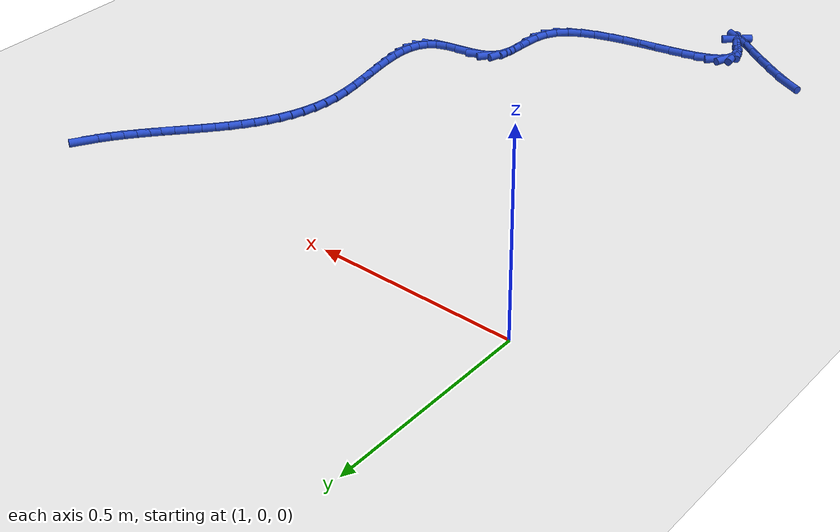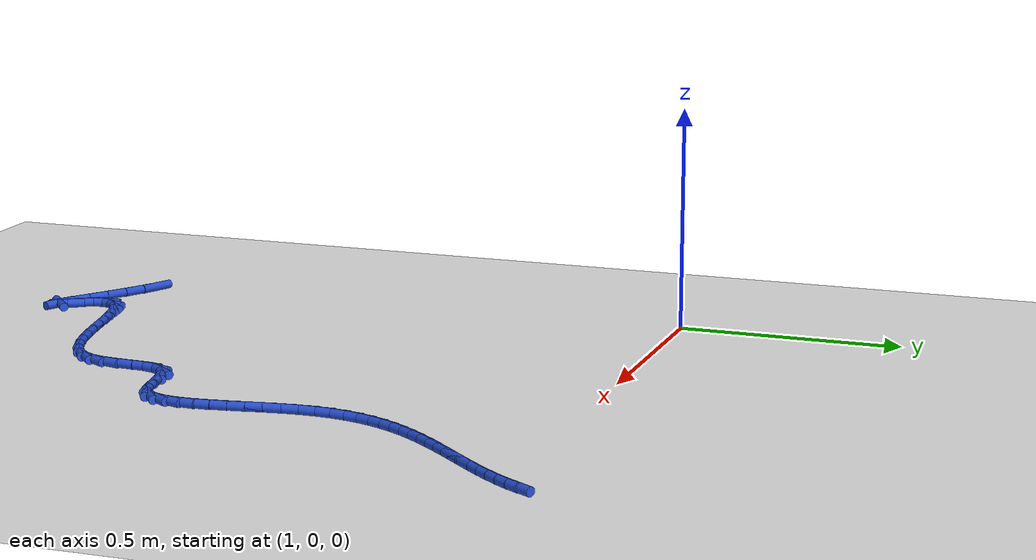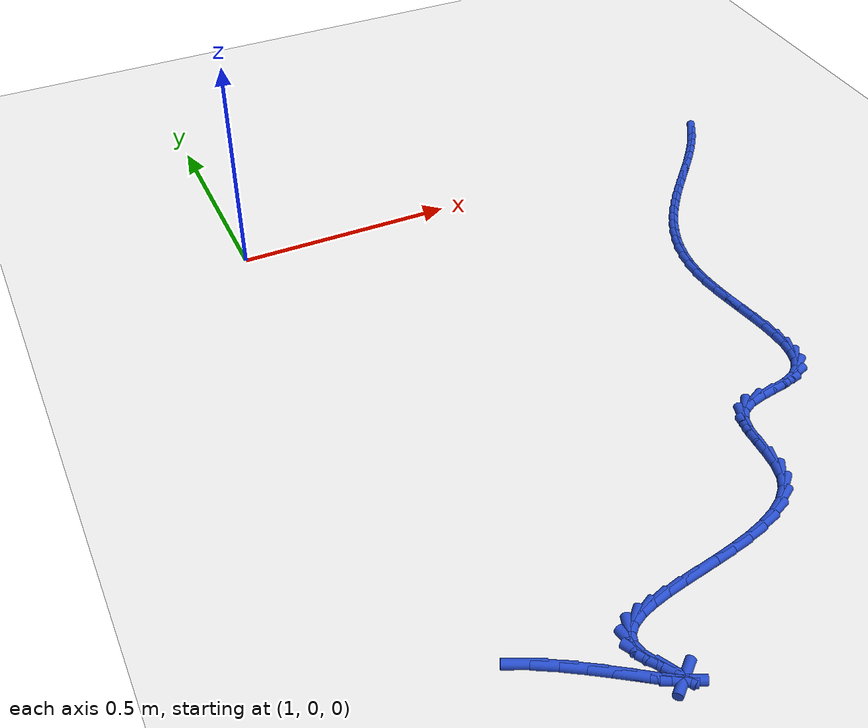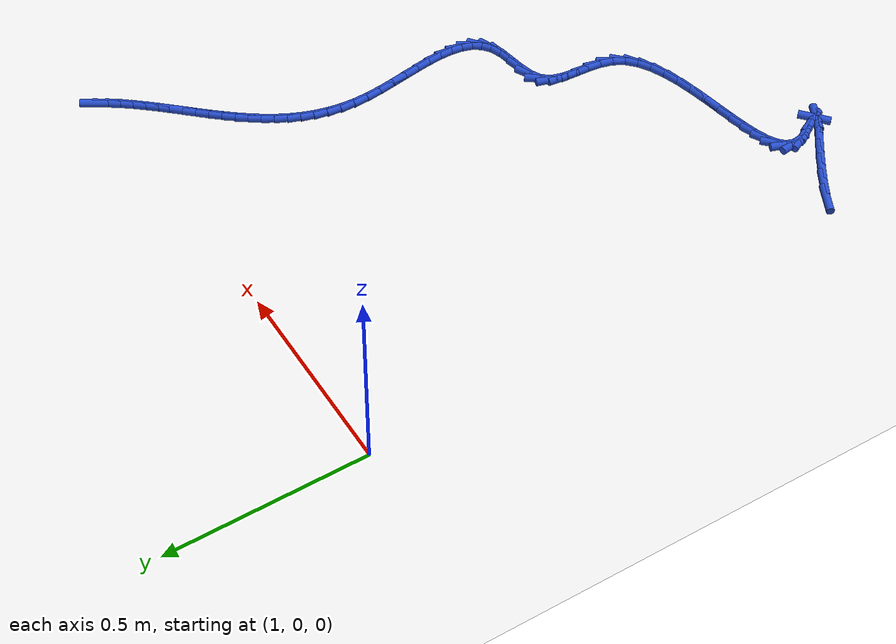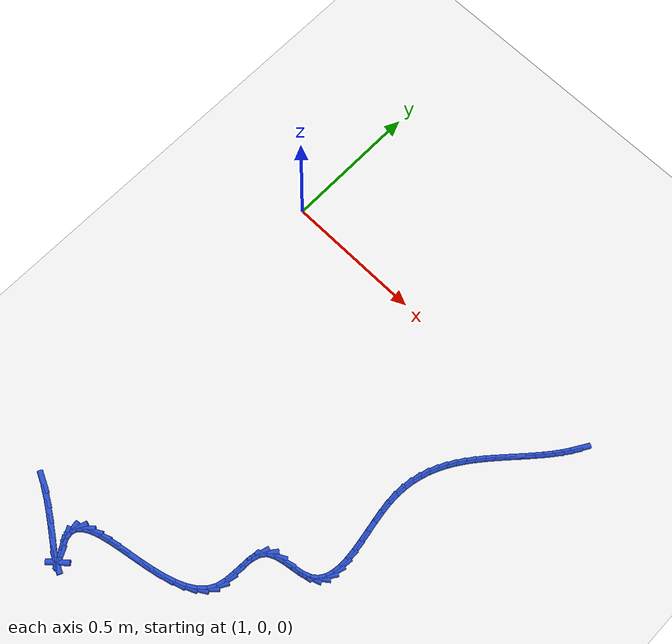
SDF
<sdf version="1.6">
 <world name="default">
  <model name="ground_plane">
   <static>1</static>
   <link name="link">
    <collision name="collision">
     <geometry><plane><normal>0 0 1</normal><size>100 100</size></plane></geometry>
     <surface><friction><ode><mu>100</mu><mu2>50</mu2></ode></friction></surface>
    </collision>
    <visual name="visual">
     <cast_shadows>0</cast_shadows>
     <geometry><plane><normal>0 0 1</normal><size>100 100</size></plane></geometry>
     <material>
      <script><uri>file://media/materials/scripts/gazebo.material</uri><name>Gazebo/WhiteGlow</name></script>
     </material>
    </visual>
   </link>
  </model>
  <model name="line">
   <link name="link_143">
    <pose>2.24518805305615 0.0347350595012619 0.01 0 1.57 1.0238294063295366</pose>
    <collision name="collision">
     <geometry><cylinder><radius>0.01</radius><length>0.08</length></cylinder></geometry>
    </collision>
    <visual name="visual">
     <material>
      <script><name>Gazebo/Blue</name><uri>file://media/materials/scripts/gazebo.material</uri></script>
     </material>
     <geometry><cylinder><radius>0.01</radius><length>0.08</length></cylinder></geometry>
    </visual>
   </link>
   <link name="link_144">
    <pose>2.2296212810901763 0.009171328017476079 0.01 0 1.57 0.9665044520231132</pose>
    <collision name="collision">
     <geometry><cylinder><radius>0.01</radius><length>0.08</length></cylinder></geometry>
    </collision>
    <visual name="visual">
     <material>
      <script><name>Gazebo/Blue</name><uri>file://media/materials/scripts/gazebo.material</uri></script>
     </material>
     <geometry><cylinder><radius>0.01</radius><length>0.08</length></cylinder></geometry>
    </visual>
   </link>
   <link name="link_145">
    <pose>2.212298453751947 -0.01591763615794463 0.01 0 1.57 0.9206130524525977</pose>
    <collision name="collision">
     <geometry><cylinder><radius>0.01</radius><length>0.08</length></cylinder></geometry>
    </collision>
    <visual name="visual">
     <material>
      <script><name>Gazebo/Blue</name><uri>file://media/materials/scripts/gazebo.material</uri></script>
     </material>
     <geometry><cylinder><radius>0.01</radius><length>0.08</length></cylinder></geometry>
    </visual>
   </link>
   <link name="link_146">
    <pose>2.1935097283615472 -0.04062359640479647 0.01 0 1.57 0.8853420018404741</pose>
    <collision name="collision">
     <geometry><cylinder><radius>0.01</radius><length>0.08</length></cylinder></geometry>
    </collision>
    <visual name="visual">
     <material>
      <script><name>Gazebo/Blue</name><uri>file://media/materials/scripts/gazebo.material</uri></script>
     </material>
     <geometry><cylinder><radius>0.01</radius><length>0.08</length></cylinder></geometry>
    </visual>
   </link>
   <link name="link_147">
    <pose>2.173545262239058 -0.06503831610287343 0.01 0 1.57 0.8599335481359236</pose>
    <collision name="collision">
     <geometry><cylinder><radius>0.01</radius><length>0.08</length></cylinder></geometry>
    </collision>
    <visual name="visual">
     <material>
      <script><name>Gazebo/Blue</name><uri>file://media/materials/scripts/gazebo.material</uri></script>
     </material>
     <geometry><cylinder><radius>0.01</radius><length>0.08</length></cylinder></geometry>
    </visual>
   </link>
   <link name="link_148">
    <pose>2.1526952127045638 -0.08925355863197172 0.01 0 1.57 0.8437703603667672</pose>
    <collision name="collision">
     <geometry><cylinder><radius>0.01</radius><length>0.08</length></cylinder></geometry>
    </collision>
    <visual name="visual">
     <material>
      <script><name>Gazebo/Blue</name><uri>file://media/materials/scripts/gazebo.material</uri></script>
     </material>
     <geometry><cylinder><radius>0.01</radius><length>0.08</length></cylinder></geometry>
    </visual>
   </link>
   <link name="link_149">
    <pose>2.1312497370781474 -0.11336108737188688 0.01 0 1.57 0.8364165776421547</pose>
    <collision name="collision">
     <geometry><cylinder><radius>0.01</radius><length>0.08</length></cylinder></geometry>
    </collision>
    <visual name="visual">
     <material>
      <script><name>Gazebo/Blue</name><uri>file://media/materials/scripts/gazebo.material</uri></script>
     </material>
     <geometry><cylinder><radius>0.01</radius><length>0.08</length></cylinder></geometry>
    </visual>
   </link>
   <link name="link_150">
    <pose>2.1094989926798915 -0.13745266570241435 0.01 0 1.57 0.8376337652613854</pose>
    <collision name="collision">
     <geometry><cylinder><radius>0.01</radius><length>0.08</length></cylinder></geometry>
    </collision>
    <visual name="visual">
     <material>
      <script><name>Gazebo/Blue</name><uri>file://media/materials/scripts/gazebo.material</uri></script>
     </material>
     <geometry><cylinder><radius>0.01</radius><length>0.08</length></cylinder></geometry>
    </visual>
   </link>
   <link name="link_151">
    <pose>2.0877331368298804 -0.1616200570033497 0.01 0 1.57 0.8473832365019435</pose>
    <collision name="collision">
     <geometry><cylinder><radius>0.01</radius><length>0.08</length></cylinder></geometry>
    </collision>
    <visual name="visual">
     <material>
      <script><name>Gazebo/Blue</name><uri>file://media/materials/scripts/gazebo.material</uri></script>
     </material>
     <geometry><cylinder><radius>0.01</radius><length>0.08</length></cylinder></geometry>
    </visual>
   </link>
   <link name="link_152">
    <pose>2.066242326848196 -0.18595502465448832 0.01 0 1.57 0.865819841599192</pose>
    <collision name="collision">
     <geometry><cylinder><radius>0.01</radius><length>0.08</length></cylinder></geometry>
    </collision>
    <visual name="visual">
     <material>
      <script><name>Gazebo/Blue</name><uri>file://media/materials/scripts/gazebo.material</uri></script>
     </material>
     <geometry><cylinder><radius>0.01</radius><length>0.08</length></cylinder></geometry>
    </visual>
   </link>
   <link name="link_153">
    <pose>2.0453167200549216 -0.21054933203562579 0.01 0 1.57 0.8932770154827568</pose>
    <collision name="collision">
     <geometry><cylinder><radius>0.01</radius><length>0.08</length></cylinder></geometry>
    </collision>
    <visual name="visual">
     <material>
      <script><name>Gazebo/Blue</name><uri>file://media/materials/scripts/gazebo.material</uri></script>
     </material>
     <geometry><cylinder><radius>0.01</radius><length>0.08</length></cylinder></geometry>
    </visual>
   </link>
   <link name="link_154">
    <pose>2.02524647377014 -0.23549474252655753 0.01 0 1.57 0.9302360158156263</pose>
    <collision name="collision">
     <geometry><cylinder><radius>0.01</radius><length>0.08</length></cylinder></geometry>
    </collision>
    <visual name="visual">
     <material>
      <script><name>Gazebo/Blue</name><uri>file://media/materials/scripts/gazebo.material</uri></script>
     </material>
     <geometry><cylinder><radius>0.01</radius><length>0.08</length></cylinder></geometry>
    </visual>
   </link>
   <link name="link_155">
    <pose>2.006321617497516 -0.26088308816858397 0.01 0 1.57 0.9768089700307977</pose>
    <collision name="collision">
     <geometry><cylinder><radius>0.01</radius><length>0.08</length></cylinder></geometry>
    </collision>
    <visual name="visual">
     <material>
      <script><name>Gazebo/Blue</name><uri>file://media/materials/scripts/gazebo.material</uri></script>
     </material>
     <geometry><cylinder><radius>0.01</radius><length>0.08</length></cylinder></geometry>
    </visual>
   </link>
   <link name="link_156">
    <pose>1.9888045056125374 -0.2868210677624469 0.01 0 1.57 1.0322438270973906</pose>
    <collision name="collision">
     <geometry><cylinder><radius>0.01</radius><length>0.08</length></cylinder></geometry>
    </collision>
    <visual name="visual">
     <material>
      <script><name>Gazebo/Blue</name><uri>file://media/materials/scripts/gazebo.material</uri></script>
     </material>
     <geometry><cylinder><radius>0.01</radius><length>0.08</length></cylinder></geometry>
    </visual>
   </link>
   <link name="link_157">
    <pose>1.9728954593077348 -0.313448703618807 0.01 0 1.57 1.0961927992141003</pose>
    <collision name="collision">
     <geometry><cylinder><radius>0.01</radius><length>0.08</length></cylinder></geometry>
    </collision>
    <visual name="visual">
     <material>
      <script><name>Gazebo/Blue</name><uri>file://media/materials/scripts/gazebo.material</uri></script>
     </material>
     <geometry><cylinder><radius>0.01</radius><length>0.08</length></cylinder></geometry>
    </visual>
   </link>
   <link name="link_158">
    <pose>1.9587863617255552 -0.34091055087144206 0.01 0 1.57 1.168032423981075</pose>
    <collision name="collision">
     <geometry><cylinder><radius>0.01</radius><length>0.08</length></cylinder></geometry>
    </collision>
    <visual name="visual">
     <material>
      <script><name>Gazebo/Blue</name><uri>file://media/materials/scripts/gazebo.material</uri></script>
     </material>
     <geometry><cylinder><radius>0.01</radius><length>0.08</length></cylinder></geometry>
    </visual>
   </link>
   <link name="link_159">
    <pose>1.9466690960084465 -0.36935116465413015 0.01 0 1.57 1.2466456165480597</pose>
    <collision name="collision">
     <geometry><cylinder><radius>0.01</radius><length>0.08</length></cylinder></geometry>
    </collision>
    <visual name="visual">
     <material>
      <script><name>Gazebo/Blue</name><uri>file://media/materials/scripts/gazebo.material</uri></script>
     </material>
     <geometry><cylinder><radius>0.01</radius><length>0.08</length></cylinder></geometry>
    </visual>
   </link>
   <link name="link_160">
    <pose>1.9367355452988555 -0.3989151001006489 0.01 0 1.57 1.3304018167706633</pose>
    <collision name="collision">
     <geometry><cylinder><radius>0.01</radius><length>0.08</length></cylinder></geometry>
    </collision>
    <visual name="visual">
     <material>
      <script><name>Gazebo/Blue</name><uri>file://media/materials/scripts/gazebo.material</uri></script>
     </material>
     <geometry><cylinder><radius>0.01</radius><length>0.08</length></cylinder></geometry>
    </visual>
   </link>
   <link name="link_161">
    <pose>1.9291775927392292 -0.4297469123447764 0.01 0 1.57 1.4172437419804598</pose>
    <collision name="collision">
     <geometry><cylinder><radius>0.01</radius><length>0.08</length></cylinder></geometry>
    </collision>
    <visual name="visual">
     <material>
      <script><name>Gazebo/Blue</name><uri>file://media/materials/scripts/gazebo.material</uri></script>
     </material>
     <geometry><cylinder><radius>0.01</radius><length>0.08</length></cylinder></geometry>
    </visual>
   </link>
   <link name="link_162">
    <pose>1.9241871214720145 -0.46199115652029055 0.01 0 1.57 1.5048852646119204</pose>
    <collision name="collision">
     <geometry><cylinder><radius>0.01</radius><length>0.08</length></cylinder></geometry>
    </collision>
    <visual name="visual">
     <material>
      <script><name>Gazebo/Blue</name><uri>file://media/materials/scripts/gazebo.material</uri></script>
     </material>
     <geometry><cylinder><radius>0.01</radius><length>0.08</length></cylinder></geometry>
    </visual>
   </link>
   <link name="link_163">
    <pose>1.9219560146396588 -0.49579238776096896 0.01 0 1.57 -1.5507154641270826</pose>
    <collision name="collision">
     <geometry><cylinder><radius>0.01</radius><length>0.08</length></cylinder></geometry>
    </collision>
    <visual name="visual">
     <material>
      <script><name>Gazebo/Blue</name><uri>file://media/materials/scripts/gazebo.material</uri></script>
     </material>
     <geometry><cylinder><radius>0.01</radius><length>0.08</length></cylinder></geometry>
    </visual>
   </link>
   <link name="link_164">
    <pose>1.9226689322524324 -0.5312899555750639 0.01 0 1.57 -1.478687494076818</pose>
    <collision name="collision">
     <geometry><cylinder><radius>0.01</radius><length>0.08</length></cylinder></geometry>
    </collision>
    <visual name="visual">
     <material>
      <script><name>Gazebo/Blue</name><uri>file://media/materials/scripts/gazebo.material</uri></script>
     </material>
     <geometry><cylinder><radius>0.01</radius><length>0.08</length></cylinder></geometry>
    </visual>
   </link>
   <link name="link_165">
    <pose>1.9260893760004283 -0.5683196856741015 0.01 0 1.57 -1.4333789104963062</pose>
    <collision name="collision">
     <geometry><cylinder><radius>0.01</radius><length>0.08</length></cylinder></geometry>
    </collision>
    <visual name="visual">
     <material>
      <script><name>Gazebo/Blue</name><uri>file://media/materials/scripts/gazebo.material</uri></script>
     </material>
     <geometry><cylinder><radius>0.01</radius><length>0.08</length></cylinder></geometry>
    </visual>
   </link>
   <link name="link_166">
    <pose>1.9313349887531812 -0.6062519409923847 0.01 0 1.57 -1.4114472553672364</pose>
    <collision name="collision">
     <geometry><cylinder><radius>0.01</radius><length>0.08</length></cylinder></geometry>
    </collision>
    <visual name="visual">
     <material>
      <script><name>Gazebo/Blue</name><uri>file://media/materials/scripts/gazebo.material</uri></script>
     </material>
     <geometry><cylinder><radius>0.01</radius><length>0.08</length></cylinder></geometry>
    </visual>
   </link>
   <link name="link_167">
    <pose>1.9374686585236784 -0.6444176232897542 0.01 0 1.57 -1.4109056995880347</pose>
    <collision name="collision">
     <geometry><cylinder><radius>0.01</radius><length>0.08</length></cylinder></geometry>
    </collision>
    <visual name="visual">
     <material>
      <script><name>Gazebo/Blue</name><uri>file://media/materials/scripts/gazebo.material</uri></script>
     </material>
     <geometry><cylinder><radius>0.01</radius><length>0.08</length></cylinder></geometry>
    </visual>
   </link>
   <link name="link_168">
    <pose>1.943553273324911 -0.6821476343260521 0.01 0 1.57 -1.4324793548940657</pose>
    <collision name="collision">
     <geometry><cylinder><radius>0.01</radius><length>0.08</length></cylinder></geometry>
    </collision>
    <visual name="visual">
     <material>
      <script><name>Gazebo/Blue</name><uri>file://media/materials/scripts/gazebo.material</uri></script>
     </material>
     <geometry><cylinder><radius>0.01</radius><length>0.08</length></cylinder></geometry>
    </visual>
   </link>
   <link name="link_169">
    <pose>1.9486517211698664 -0.7187728758611195 0.01 0 1.57 -1.4799411582030864</pose>
    <collision name="collision">
     <geometry><cylinder><radius>0.01</radius><length>0.08</length></cylinder></geometry>
    </collision>
    <visual name="visual">
     <material>
      <script><name>Gazebo/Blue</name><uri>file://media/materials/scripts/gazebo.material</uri></script>
     </material>
     <geometry><cylinder><radius>0.01</radius><length>0.08</length></cylinder></geometry>
    </visual>
   </link>
   <link name="link_170">
    <pose>1.9518268900715339 -0.7536242496547976 0.01 0 1.57 -1.561083783213815</pose>
    <collision name="collision">
     <geometry><cylinder><radius>0.01</radius><length>0.08</length></cylinder></geometry>
    </collision>
    <visual name="visual">
     <material>
      <script><name>Gazebo/Blue</name><uri>file://media/materials/scripts/gazebo.material</uri></script>
     </material>
     <geometry><cylinder><radius>0.01</radius><length>0.08</length></cylinder></geometry>
    </visual>
   </link>
   <link name="link_171">
    <pose>1.9521416680429011 -0.7860326574669282 0.01 0 1.57 1.4524724681699874</pose>
    <collision name="collision">
     <geometry><cylinder><radius>0.01</radius><length>0.08</length></cylinder></geometry>
    </collision>
    <visual name="visual">
     <material>
      <script><name>Gazebo/Blue</name><uri>file://media/materials/scripts/gazebo.material</uri></script>
     </material>
     <geometry><cylinder><radius>0.01</radius><length>0.08</length></cylinder></geometry>
    </visual>
   </link>
   <link name="link_172">
    <pose>1.9486589430969583 -0.8153290010573526 0.01 0 1.57 1.2592286697993471</pose>
    <collision name="collision">
     <geometry><cylinder><radius>0.01</radius><length>0.08</length></cylinder></geometry>
    </collision>
    <visual name="visual">
     <material>
      <script><name>Gazebo/Blue</name><uri>file://media/materials/scripts/gazebo.material</uri></script>
     </material>
     <geometry><cylinder><radius>0.01</radius><length>0.08</length></cylinder></geometry>
    </visual>
   </link>
   <link name="link_173">
    <pose>1.9404416032466925 -0.8408441821859128 0.01 0 1.57 0.9878791571148551</pose>
    <collision name="collision">
     <geometry><cylinder><radius>0.01</radius><length>0.08</length></cylinder></geometry>
    </collision>
    <visual name="visual">
     <material>
      <script><name>Gazebo/Blue</name><uri>file://media/materials/scripts/gazebo.material</uri></script>
     </material>
     <geometry><cylinder><radius>0.01</radius><length>0.08</length></cylinder></geometry>
    </visual>
   </link>
   <link name="link_174">
    <pose>1.9265525365050937 -0.8619091026124486 0.01 0 1.57 0.6611266339393992</pose>
    <collision name="collision">
     <geometry><cylinder><radius>0.01</radius><length>0.08</length></cylinder></geometry>
    </collision>
    <visual name="visual">
     <material>
      <script><name>Gazebo/Blue</name><uri>file://media/materials/scripts/gazebo.material</uri></script>
     </material>
     <geometry><cylinder><radius>0.01</radius><length>0.08</length></cylinder></geometry>
    </visual>
   </link>
   <link name="link_175">
    <pose>1.9060546308851505 -0.8778546640968026 0.01 0 1.57 0.36059000293730653</pose>
    <collision name="collision">
     <geometry><cylinder><radius>0.01</radius><length>0.08</length></cylinder></geometry>
    </collision>
    <visual name="visual">
     <material>
      <script><name>Gazebo/Blue</name><uri>file://media/materials/scripts/gazebo.material</uri></script>
     </material>
     <geometry><cylinder><radius>0.01</radius><length>0.08</length></cylinder></geometry>
    </visual>
   </link>
   <link name="link_176">
    <pose>1.878371639228813 -0.8882932723402532 0.01 0 1.57 0.2056718425971205</pose>
    <collision name="collision">
     <geometry><cylinder><radius>0.01</radius><length>0.08</length></cylinder></geometry>
    </collision>
    <visual name="visual">
     <material>
      <script><name>Gazebo/Blue</name><uri>file://media/materials/scripts/gazebo.material</uri></script>
     </material>
     <geometry><cylinder><radius>0.01</radius><length>0.08</length></cylinder></geometry>
    </visual>
   </link>
   <link name="link_177">
    <pose>1.8458102808887387 -0.8950862815995017 0.01 0 1.57 0.17842122880281444</pose>
    <collision name="collision">
     <geometry><cylinder><radius>0.01</radius><length>0.08</length></cylinder></geometry>
    </collision>
    <visual name="visual">
     <material>
      <script><name>Gazebo/Blue</name><uri>file://media/materials/scripts/gazebo.material</uri></script>
     </material>
     <geometry><cylinder><radius>0.01</radius><length>0.08</length></cylinder></geometry>
    </visual>
   </link>
   <link name="link_178">
    <pose>1.8120590501102474 -0.9011729430257267 0.01 0 1.57 0.2604418599196795</pose>
    <collision name="collision">
     <geometry><cylinder><radius>0.01</radius><length>0.08</length></cylinder></geometry>
    </collision>
    <visual name="visual">
     <material>
      <script><name>Gazebo/Blue</name><uri>file://media/materials/scripts/gazebo.material</uri></script>
     </material>
     <geometry><cylinder><radius>0.01</radius><length>0.08</length></cylinder></geometry>
    </visual>
   </link>
   <link name="link_179">
    <pose>1.7808151273095376 -0.9094992836904567 0.01 0 1.57 0.49484727813183976</pose>
    <collision name="collision">
     <geometry><cylinder><radius>0.01</radius><length>0.08</length></cylinder></geometry>
    </collision>
    <visual name="visual">
     <material>
      <script><name>Gazebo/Blue</name><uri>file://media/materials/scripts/gazebo.material</uri></script>
     </material>
     <geometry><cylinder><radius>0.01</radius><length>0.08</length></cylinder></geometry>
    </visual>
   </link>
   <link name="link_180">
    <pose>1.7557756929028074 -0.9230113306652198 0.01 0 1.57 0.9281044095483594</pose>
    <collision name="collision">
     <geometry><cylinder><radius>0.01</radius><length>0.08</length></cylinder></geometry>
    </collision>
    <visual name="visual">
     <material>
      <script><name>Gazebo/Blue</name><uri>file://media/materials/scripts/gazebo.material</uri></script>
     </material>
     <geometry><cylinder><radius>0.01</radius><length>0.08</length></cylinder></geometry>
    </visual>
   </link>
   <link name="link_181">
    <pose>1.7399571834803471 -0.9441382710958495 0.01 0 1.57 1.2908158634999203</pose>
    <collision name="collision">
     <geometry><cylinder><radius>0.01</radius><length>0.08</length></cylinder></geometry>
    </collision>
    <visual name="visual">
     <material>
      <script><name>Gazebo/Blue</name><uri>file://media/materials/scripts/gazebo.material</uri></script>
     </material>
     <geometry><cylinder><radius>0.01</radius><length>0.08</length></cylinder></geometry>
    </visual>
   </link>
   <link name="link_182">
    <pose>1.7319587819368476 -0.9719555884515036 0.01 0 1.57 1.4675238238905113</pose>
    <collision name="collision">
     <geometry><cylinder><radius>0.01</radius><length>0.08</length></cylinder></geometry>
    </collision>
    <visual name="visual">
     <material>
      <script><name>Gazebo/Blue</name><uri>file://media/materials/scripts/gazebo.material</uri></script>
     </material>
     <geometry><cylinder><radius>0.01</radius><length>0.08</length></cylinder></geometry>
    </visual>
   </link>
   <link name="link_183">
    <pose>1.7286168891494766 -1.0042004123415178 0.01 0 1.57 1.516974628823342</pose>
    <collision name="collision">
     <geometry><cylinder><radius>0.01</radius><length>0.08</length></cylinder></geometry>
    </collision>
    <visual name="visual">
     <material>
      <script><name>Gazebo/Blue</name><uri>file://media/materials/scripts/gazebo.material</uri></script>
     </material>
     <geometry><cylinder><radius>0.01</radius><length>0.08</length></cylinder></geometry>
    </visual>
   </link>
   <link name="link_184">
    <pose>1.7267633111959766 -1.0386063838738209 0.01 0 1.57 1.4681444576254798</pose>
    <collision name="collision">
     <geometry><cylinder><radius>0.01</radius><length>0.08</length></cylinder></geometry>
    </collision>
    <visual name="visual">
     <material>
      <script><name>Gazebo/Blue</name><uri>file://media/materials/scripts/gazebo.material</uri></script>
     </material>
     <geometry><cylinder><radius>0.01</radius><length>0.08</length></cylinder></geometry>
    </visual>
   </link>
   <link name="link_185">
    <pose>1.723229854154092 -1.0729071441563431 0.01 0 1.57 1.3140845494564546</pose>
    <collision name="collision">
     <geometry><cylinder><radius>0.01</radius><length>0.08</length></cylinder></geometry>
    </collision>
    <visual name="visual">
     <material>
      <script><name>Gazebo/Blue</name><uri>file://media/materials/scripts/gazebo.material</uri></script>
     </material>
     <geometry><cylinder><radius>0.01</radius><length>0.08</length></cylinder></geometry>
    </visual>
   </link>
   <link name="link_186">
    <pose>1.7148483241015653 -1.1048363342970136 0.01 0 1.57 1.0449610285897297</pose>
    <collision name="collision">
     <geometry><cylinder><radius>0.01</radius><length>0.08</length></cylinder></geometry>
    </collision>
    <visual name="visual">
     <material>
      <script><name>Gazebo/Blue</name><uri>file://media/materials/scripts/gazebo.material</uri></script>
     </material>
     <geometry><cylinder><radius>0.01</radius><length>0.08</length></cylinder></geometry>
    </visual>
   </link>
   <link name="link_187">
    <pose>1.698857139656353 -1.1323913714482348 0.01 0 1.57 0.7740770462100678</pose>
    <collision name="collision">
     <geometry><cylinder><radius>0.01</radius><length>0.08</length></cylinder></geometry>
    </collision>
    <visual name="visual">
     <material>
      <script><name>Gazebo/Blue</name><uri>file://media/materials/scripts/gazebo.material</uri></script>
     </material>
     <geometry><cylinder><radius>0.01</radius><length>0.08</length></cylinder></geometry>
    </visual>
   </link>
   <link name="link_188">
    <pose>1.6753194121197374 -1.1554020959888804 0.01 0 1.57 0.5690164515925131</pose>
    <collision name="collision">
     <geometry><cylinder><radius>0.01</radius><length>0.08</length></cylinder></geometry>
    </collision>
    <visual name="visual">
     <material>
      <script><name>Gazebo/Blue</name><uri>file://media/materials/scripts/gazebo.material</uri></script>
     </material>
     <geometry><cylinder><radius>0.01</radius><length>0.08</length></cylinder></geometry>
    </visual>
   </link>
   <link name="link_189">
    <pose>1.6454969791447769 -1.1744759812141914 0.01 0 1.57 0.42449764192786293</pose>
    <collision name="collision">
     <geometry><cylinder><radius>0.01</radius><length>0.08</length></cylinder></geometry>
    </collision>
    <visual name="visual">
     <material>
      <script><name>Gazebo/Blue</name><uri>file://media/materials/scripts/gazebo.material</uri></script>
     </material>
     <geometry><cylinder><radius>0.01</radius><length>0.08</length></cylinder></geometry>
    </visual>
   </link>
   <link name="link_190">
    <pose>1.6106560313617677 -1.1902233242652183 0.01 0 1.57 0.32563236507520843</pose>
    <collision name="collision">
     <geometry><cylinder><radius>0.01</radius><length>0.08</length></cylinder></geometry>
    </collision>
    <visual name="visual">
     <material>
      <script><name>Gazebo/Blue</name><uri>file://media/materials/scripts/gazebo.material</uri></script>
     </material>
     <geometry><cylinder><radius>0.01</radius><length>0.08</length></cylinder></geometry>
    </visual>
   </link>
   <link name="link_191">
    <pose>1.5720627594010084 -1.20325442228301 0.01 0 1.57 0.2599350548272718</pose>
    <collision name="collision">
     <geometry><cylinder><radius>0.01</radius><length>0.08</length></cylinder></geometry>
    </collision>
    <visual name="visual">
     <material>
      <script><name>Gazebo/Blue</name><uri>file://media/materials/scripts/gazebo.material</uri></script>
     </material>
     <geometry><cylinder><radius>0.01</radius><length>0.08</length></cylinder></geometry>
    </visual>
   </link>
   <link name="link_192">
    <pose>1.530983353892793 -1.2141795724086162 0.01 0 1.57 0.21933668554796307</pose>
    <collision name="collision">
     <geometry><cylinder><radius>0.01</radius><length>0.08</length></cylinder></geometry>
    </collision>
    <visual name="visual">
     <material>
      <script><name>Gazebo/Blue</name><uri>file://media/materials/scripts/gazebo.material</uri></script>
     </material>
     <geometry><cylinder><radius>0.01</radius><length>0.08</length></cylinder></geometry>
    </visual>
   </link>
   <link name="link_193">
    <pose>1.4886840054674193 -1.223609071783087 0.01 0 1.57 0.19952297966809482</pose>
    <collision name="collision">
     <geometry><cylinder><radius>0.01</radius><length>0.08</length></cylinder></geometry>
    </collision>
    <visual name="visual">
     <material>
      <script><name>Gazebo/Blue</name><uri>file://media/materials/scripts/gazebo.material</uri></script>
     </material>
     <geometry><cylinder><radius>0.01</radius><length>0.08</length></cylinder></geometry>
    </visual>
   </link>
   <link name="link_194">
    <pose>1.4464309047551833 -1.2321532175474725 0.01 0 1.57 0.1992961987043253</pose>
    <collision name="collision">
     <geometry><cylinder><radius>0.01</radius><length>0.08</length></cylinder></geometry>
    </collision>
    <visual name="visual">
     <material>
      <script><name>Gazebo/Blue</name><uri>file://media/materials/scripts/gazebo.material</uri></script>
     </material>
     <geometry><cylinder><radius>0.01</radius><length>0.08</length></cylinder></geometry>
    </visual>
   </link>
   <link name="link_195">
    <pose>1.4054902423863818 -1.2404223068428224 0.01 0 1.57 0.2206412690566134</pose>
    <collision name="collision">
     <geometry><cylinder><radius>0.01</radius><length>0.08</length></cylinder></geometry>
    </collision>
    <visual name="visual">
     <material>
      <script><name>Gazebo/Blue</name><uri>file://media/materials/scripts/gazebo.material</uri></script>
     </material>
     <geometry><cylinder><radius>0.01</radius><length>0.08</length></cylinder></geometry>
    </visual>
   </link>
   <link name="link_196">
    <pose>1.3671282089913104 -1.2490266368101863 0.01 0 1.57 0.26991787012593244</pose>
    <collision name="collision">
     <geometry><cylinder><radius>0.01</radius><length>0.08</length></cylinder></geometry>
    </collision>
    <visual name="visual">
     <material>
      <script><name>Gazebo/Blue</name><uri>file://media/materials/scripts/gazebo.material</uri></script>
     </material>
     <geometry><cylinder><radius>0.01</radius><length>0.08</length></cylinder></geometry>
    </visual>
   </link>
   <link name="link_197">
    <pose>1.3326109952002656 -1.2585765045906139 0.01 0 1.57 0.3611053230081607</pose>
    <collision name="collision">
     <geometry><cylinder><radius>0.01</radius><length>0.08</length></cylinder></geometry>
    </collision>
    <visual name="visual">
     <material>
      <script><name>Gazebo/Blue</name><uri>file://media/materials/scripts/gazebo.material</uri></script>
     </material>
     <geometry><cylinder><radius>0.01</radius><length>0.08</length></cylinder></geometry>
    </visual>
   </link>
   <link name="link_198">
    <pose>1.303204791643544 -1.2696822073251544 0.01 0 1.57 0.5228179056898009</pose>
    <collision name="collision">
     <geometry><cylinder><radius>0.01</radius><length>0.08</length></cylinder></geometry>
    </collision>
    <visual name="visual">
     <material>
      <script><name>Gazebo/Blue</name><uri>file://media/materials/scripts/gazebo.material</uri></script>
     </material>
     <geometry><cylinder><radius>0.01</radius><length>0.08</length></cylinder></geometry>
    </visual>
   </link>
   <link name="link_199">
    <pose>1.280175788951442 -1.2829540421548593 0.01 0 1.57 0.806475893326138</pose>
    <collision name="collision">
     <geometry><cylinder><radius>0.01</radius><length>0.08</length></cylinder></geometry>
    </collision>
    <visual name="visual">
     <material>
      <script><name>Gazebo/Blue</name><uri>file://media/materials/scripts/gazebo.material</uri></script>
     </material>
     <geometry><cylinder><radius>0.01</radius><length>0.08</length></cylinder></geometry>
    </visual>
   </link>
   <link name="link_200">
    <pose>1.2647901777542567 -1.2990023062207767 0.01 0 1.57 1.249152334927261</pose>
    <collision name="collision">
     <geometry><cylinder><radius>0.01</radius><length>0.08</length></cylinder></geometry>
    </collision>
    <visual name="visual">
     <material>
      <script><name>Gazebo/Blue</name><uri>file://media/materials/scripts/gazebo.material</uri></script>
     </material>
     <geometry><cylinder><radius>0.01</radius><length>0.08</length></cylinder></geometry>
    </visual>
   </link>
   <link name="link_201">
    <pose>1.2583141486822835 -1.3184372966639568 0.01 0 1.57 -1.414196448240044</pose>
    <collision name="collision">
     <geometry><cylinder><radius>0.01</radius><length>0.08</length></cylinder></geometry>
    </collision>
    <visual name="visual">
     <material>
      <script><name>Gazebo/Blue</name><uri>file://media/materials/scripts/gazebo.material</uri></script>
     </material>
     <geometry><cylinder><radius>0.01</radius><length>0.08</length></cylinder></geometry>
    </visual>
   </link>
   <link name="link_202">
    <pose>1.2620138923658195 -1.3418693106254498 0.01 0 1.57 -1.0865992564146971</pose>
    <collision name="collision">
     <geometry><cylinder><radius>0.01</radius><length>0.08</length></cylinder></geometry>
    </collision>
    <visual name="visual">
     <material>
      <script><name>Gazebo/Blue</name><uri>file://media/materials/scripts/gazebo.material</uri></script>
     </material>
     <geometry><cylinder><radius>0.01</radius><length>0.08</length></cylinder></geometry>
    </visual>
   </link>
   <link name="link_203">
    <pose>1.2765222598914583 -1.369454003785026 0.01 0 1.57 -0.9801194383020393</pose>
    <collision name="collision">
     <geometry><cylinder><radius>0.01</radius><length>0.08</length></cylinder></geometry>
    </collision>
    <visual name="visual">
     <material>
      <script><name>Gazebo/Blue</name><uri>file://media/materials/scripts/gazebo.material</uri></script>
     </material>
     <geometry><cylinder><radius>0.01</radius><length>0.08</length></cylinder></geometry>
    </visual>
   </link>
   <link name="link_204">
    <pose>1.2936716682613776 -1.3950296586980178 0.01 0 1.57 -1.0947262682404428</pose>
    <collision name="collision">
     <geometry><cylinder><radius>0.01</radius><length>0.08</length></cylinder></geometry>
    </collision>
    <visual name="visual">
     <material>
      <script><name>Gazebo/Blue</name><uri>file://media/materials/scripts/gazebo.material</uri></script>
     </material>
     <geometry><cylinder><radius>0.01</radius><length>0.08</length></cylinder></geometry>
    </visual>
   </link>
   <link name="link_205">
    <pose>1.3012333091262418 -1.4096946329448268 0.01 0 1.57 0.7263140425213651</pose>
    <collision name="collision">
     <geometry><cylinder><radius>0.01</radius><length>0.08</length></cylinder></geometry>
    </collision>
    <visual name="visual">
     <material>
      <script><name>Gazebo/Blue</name><uri>file://media/materials/scripts/gazebo.material</uri></script>
     </material>
     <geometry><cylinder><radius>0.01</radius><length>0.08</length></cylinder></geometry>
    </visual>
   </link>
   <link name="link_206">
    <pose>1.2975746843023968 -1.4129445943738275 0.01 0 1.57 -0.4354835302376006</pose>
    <collision name="collision">
     <geometry><cylinder><radius>0.01</radius><length>0.08</length></cylinder></geometry>
    </collision>
    <visual name="visual">
     <material>
      <script><name>Gazebo/Blue</name><uri>file://media/materials/scripts/gazebo.material</uri></script>
     </material>
     <geometry><cylinder><radius>0.01</radius><length>0.08</length></cylinder></geometry>
    </visual>
   </link>
   <link name="link_207">
    <pose>1.284089449241623 -1.4066702553764723 0.01 0 1.57 -0.5654279394876358</pose>
    <collision name="collision">
     <geometry><cylinder><radius>0.01</radius><length>0.08</length></cylinder></geometry>
    </collision>
    <visual name="visual">
     <material>
      <script><name>Gazebo/Blue</name><uri>file://media/materials/scripts/gazebo.material</uri></script>
     </material>
     <geometry><cylinder><radius>0.01</radius><length>0.08</length></cylinder></geometry>
    </visual>
   </link>
   <link name="link_208">
    <pose>1.2621714292935755 -1.3927624628096225 0.01 0 1.57 -0.596223267907565</pose>
    <collision name="collision">
     <geometry><cylinder><radius>0.01</radius><length>0.08</length></cylinder></geometry>
    </collision>
    <visual name="visual">
     <material>
      <script><name>Gazebo/Blue</name><uri>file://media/materials/scripts/gazebo.material</uri></script>
     </material>
     <geometry><cylinder><radius>0.01</radius><length>0.08</length></cylinder></geometry>
    </visual>
   </link>
   <link name="link_209">
    <pose>1.2332144498079114 -1.373112063530136 0.01 0 1.57 -0.5966373890424949</pose>
    <collision name="collision">
     <geometry><cylinder><radius>0.01</radius><length>0.08</length></cylinder></geometry>
    </collision>
    <visual name="visual">
     <material>
      <script><name>Gazebo/Blue</name><uri>file://media/materials/scripts/gazebo.material</uri></script>
     </material>
     <geometry><cylinder><radius>0.01</radius><length>0.08</length></cylinder></geometry>
    </visual>
   </link>
   <link name="link_210">
    <pose>1.1986123361342864 -1.3496099043948735 0.01 0 1.57 -0.5801356881061189</pose>
    <collision name="collision">
     <geometry><cylinder><radius>0.01</radius><length>0.08</length></cylinder></geometry>
    </collision>
    <visual name="visual">
     <material>
      <script><name>Gazebo/Blue</name><uri>file://media/materials/scripts/gazebo.material</uri></script>
     </material>
     <geometry><cylinder><radius>0.01</radius><length>0.08</length></cylinder></geometry>
    </visual>
   </link>
   <link name="link_211">
    <pose>1.1597589136223558 -1.3241468322606946 0.01 0 1.57 -0.5493020944180391</pose>
    <collision name="collision">
     <geometry><cylinder><radius>0.01</radius><length>0.08</length></cylinder></geometry>
    </collision>
    <visual name="visual">
     <material>
      <script><name>Gazebo/Blue</name><uri>file://media/materials/scripts/gazebo.material</uri></script>
     </material>
     <geometry><cylinder><radius>0.01</radius><length>0.08</length></cylinder></geometry>
    </visual>
   </link>
   <link name="link_212">
    <pose>1.1180480076217756 -1.2986136939844586 0.01 0 1.57 -0.5022445825066183</pose>
    <collision name="collision">
     <geometry><cylinder><radius>0.01</radius><length>0.08</length></cylinder></geometry>
    </collision>
    <visual name="visual">
     <material>
      <script><name>Gazebo/Blue</name><uri>file://media/materials/scripts/gazebo.material</uri></script>
     </material>
     <geometry><cylinder><radius>0.01</radius><length>0.08</length></cylinder></geometry>
    </visual>
   </link>
   <link name="link_213">
    <pose>1.0748734434822016 -1.2749013364230255 0.01 0 1.57 -0.4332039099525907</pose>
    <collision name="collision">
     <geometry><cylinder><radius>0.01</radius><length>0.08</length></cylinder></geometry>
    </collision>
    <visual name="visual">
     <material>
      <script><name>Gazebo/Blue</name><uri>file://media/materials/scripts/gazebo.material</uri></script>
     </material>
     <geometry><cylinder><radius>0.01</radius><length>0.08</length></cylinder></geometry>
    </visual>
   </link>
  </model>
 </world>
</sdf>
